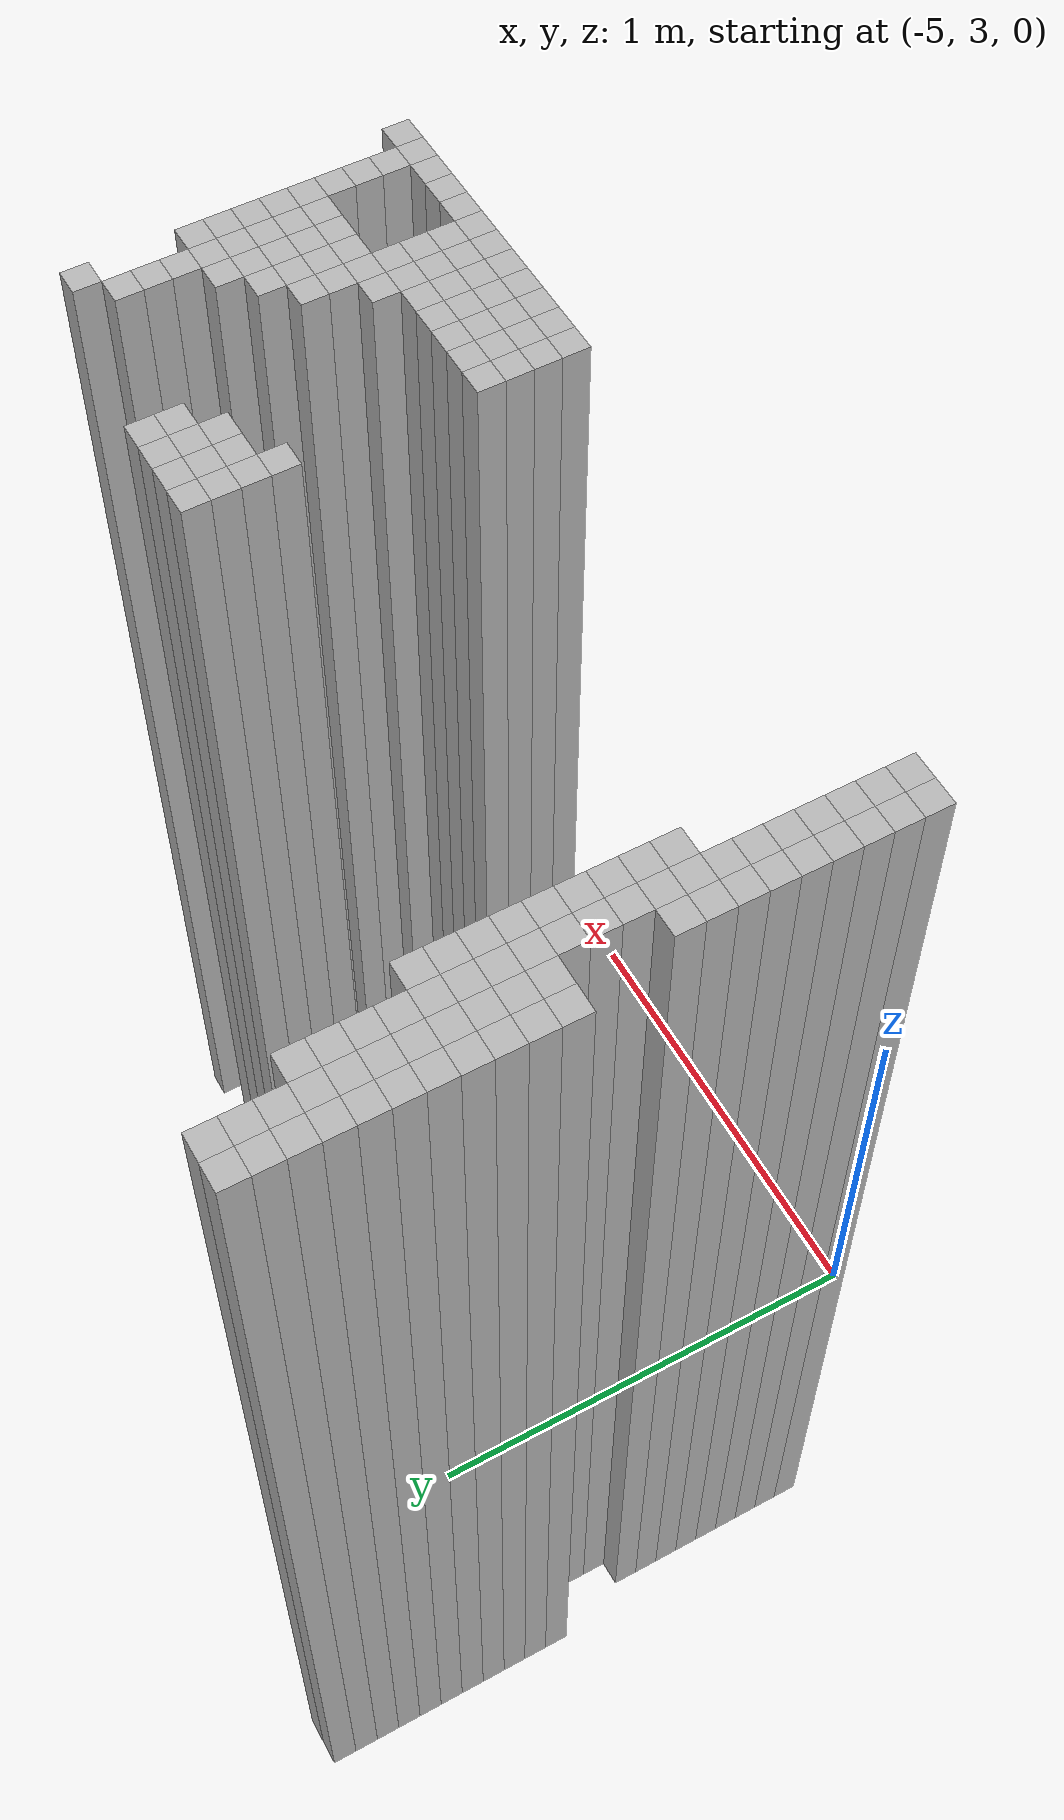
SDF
<sdf version="1.9">
 <world name="map_world">
  <model name="wall_115_64">
   <static>true</static>
   <pose>-5.411 4.480 1.250 0 0 0</pose>
   <link name="link">
    <collision name="collision"><geometry><box><size>0.050 0.050 2.500</size></box></geometry></collision>
    <visual name="visual"><geometry><box><size>0.050 0.050 2.500</size></box></geometry></visual>
   </link>
  </model>
  <model name="wall_116_64">
   <static>true</static>
   <pose>-5.361 4.480 1.250 0 0 0</pose>
   <link name="link">
    <collision name="collision"><geometry><box><size>0.050 0.050 2.500</size></box></geometry></collision>
    <visual name="visual"><geometry><box><size>0.050 0.050 2.500</size></box></geometry></visual>
   </link>
  </model>
  <model name="wall_115_65">
   <static>true</static>
   <pose>-5.411 4.430 1.250 0 0 0</pose>
   <link name="link">
    <collision name="collision"><geometry><box><size>0.050 0.050 2.500</size></box></geometry></collision>
    <visual name="visual"><geometry><box><size>0.050 0.050 2.500</size></box></geometry></visual>
   </link>
  </model>
  <model name="wall_116_65">
   <static>true</static>
   <pose>-5.361 4.430 1.250 0 0 0</pose>
   <link name="link">
    <collision name="collision"><geometry><box><size>0.050 0.050 2.500</size></box></geometry></collision>
    <visual name="visual"><geometry><box><size>0.050 0.050 2.500</size></box></geometry></visual>
   </link>
  </model>
  <model name="wall_115_66">
   <static>true</static>
   <pose>-5.411 4.380 1.250 0 0 0</pose>
   <link name="link">
    <collision name="collision"><geometry><box><size>0.050 0.050 2.500</size></box></geometry></collision>
    <visual name="visual"><geometry><box><size>0.050 0.050 2.500</size></box></geometry></visual>
   </link>
  </model>
  <model name="wall_116_66">
   <static>true</static>
   <pose>-5.361 4.380 1.250 0 0 0</pose>
   <link name="link">
    <collision name="collision"><geometry><box><size>0.050 0.050 2.500</size></box></geometry></collision>
    <visual name="visual"><geometry><box><size>0.050 0.050 2.500</size></box></geometry></visual>
   </link>
  </model>
  <model name="wall_115_67">
   <static>true</static>
   <pose>-5.411 4.330 1.250 0 0 0</pose>
   <link name="link">
    <collision name="collision"><geometry><box><size>0.050 0.050 2.500</size></box></geometry></collision>
    <visual name="visual"><geometry><box><size>0.050 0.050 2.500</size></box></geometry></visual>
   </link>
  </model>
  <model name="wall_116_67">
   <static>true</static>
   <pose>-5.361 4.330 1.250 0 0 0</pose>
   <link name="link">
    <collision name="collision"><geometry><box><size>0.050 0.050 2.500</size></box></geometry></collision>
    <visual name="visual"><geometry><box><size>0.050 0.050 2.500</size></box></geometry></visual>
   </link>
  </model>
  <model name="wall_117_67">
   <static>true</static>
   <pose>-5.311 4.330 1.250 0 0 0</pose>
   <link name="link">
    <collision name="collision"><geometry><box><size>0.050 0.050 2.500</size></box></geometry></collision>
    <visual name="visual"><geometry><box><size>0.050 0.050 2.500</size></box></geometry></visual>
   </link>
  </model>
  <model name="wall_115_68">
   <static>true</static>
   <pose>-5.411 4.280 1.250 0 0 0</pose>
   <link name="link">
    <collision name="collision"><geometry><box><size>0.050 0.050 2.500</size></box></geometry></collision>
    <visual name="visual"><geometry><box><size>0.050 0.050 2.500</size></box></geometry></visual>
   </link>
  </model>
  <model name="wall_116_68">
   <static>true</static>
   <pose>-5.361 4.280 1.250 0 0 0</pose>
   <link name="link">
    <collision name="collision"><geometry><box><size>0.050 0.050 2.500</size></box></geometry></collision>
    <visual name="visual"><geometry><box><size>0.050 0.050 2.500</size></box></geometry></visual>
   </link>
  </model>
  <model name="wall_117_68">
   <static>true</static>
   <pose>-5.311 4.280 1.250 0 0 0</pose>
   <link name="link">
    <collision name="collision"><geometry><box><size>0.050 0.050 2.500</size></box></geometry></collision>
    <visual name="visual"><geometry><box><size>0.050 0.050 2.500</size></box></geometry></visual>
   </link>
  </model>
  <model name="wall_115_69">
   <static>true</static>
   <pose>-5.411 4.230 1.250 0 0 0</pose>
   <link name="link">
    <collision name="collision"><geometry><box><size>0.050 0.050 2.500</size></box></geometry></collision>
    <visual name="visual"><geometry><box><size>0.050 0.050 2.500</size></box></geometry></visual>
   </link>
  </model>
  <model name="wall_116_69">
   <static>true</static>
   <pose>-5.361 4.230 1.250 0 0 0</pose>
   <link name="link">
    <collision name="collision"><geometry><box><size>0.050 0.050 2.500</size></box></geometry></collision>
    <visual name="visual"><geometry><box><size>0.050 0.050 2.500</size></box></geometry></visual>
   </link>
  </model>
  <model name="wall_117_69">
   <static>true</static>
   <pose>-5.311 4.230 1.250 0 0 0</pose>
   <link name="link">
    <collision name="collision"><geometry><box><size>0.050 0.050 2.500</size></box></geometry></collision>
    <visual name="visual"><geometry><box><size>0.050 0.050 2.500</size></box></geometry></visual>
   </link>
  </model>
  <model name="wall_115_70">
   <static>true</static>
   <pose>-5.411 4.180 1.250 0 0 0</pose>
   <link name="link">
    <collision name="collision"><geometry><box><size>0.050 0.050 2.500</size></box></geometry></collision>
    <visual name="visual"><geometry><box><size>0.050 0.050 2.500</size></box></geometry></visual>
   </link>
  </model>
  <model name="wall_116_70">
   <static>true</static>
   <pose>-5.361 4.180 1.250 0 0 0</pose>
   <link name="link">
    <collision name="collision"><geometry><box><size>0.050 0.050 2.500</size></box></geometry></collision>
    <visual name="visual"><geometry><box><size>0.050 0.050 2.500</size></box></geometry></visual>
   </link>
  </model>
  <model name="wall_117_70">
   <static>true</static>
   <pose>-5.311 4.180 1.250 0 0 0</pose>
   <link name="link">
    <collision name="collision"><geometry><box><size>0.050 0.050 2.500</size></box></geometry></collision>
    <visual name="visual"><geometry><box><size>0.050 0.050 2.500</size></box></geometry></visual>
   </link>
  </model>
  <model name="wall_115_71">
   <static>true</static>
   <pose>-5.411 4.130 1.250 0 0 0</pose>
   <link name="link">
    <collision name="collision"><geometry><box><size>0.050 0.050 2.500</size></box></geometry></collision>
    <visual name="visual"><geometry><box><size>0.050 0.050 2.500</size></box></geometry></visual>
   </link>
  </model>
  <model name="wall_116_71">
   <static>true</static>
   <pose>-5.361 4.130 1.250 0 0 0</pose>
   <link name="link">
    <collision name="collision"><geometry><box><size>0.050 0.050 2.500</size></box></geometry></collision>
    <visual name="visual"><geometry><box><size>0.050 0.050 2.500</size></box></geometry></visual>
   </link>
  </model>
  <model name="wall_117_71">
   <static>true</static>
   <pose>-5.311 4.130 1.250 0 0 0</pose>
   <link name="link">
    <collision name="collision"><geometry><box><size>0.050 0.050 2.500</size></box></geometry></collision>
    <visual name="visual"><geometry><box><size>0.050 0.050 2.500</size></box></geometry></visual>
   </link>
  </model>
  <model name="wall_118_71">
   <static>true</static>
   <pose>-5.261 4.130 1.250 0 0 0</pose>
   <link name="link">
    <collision name="collision"><geometry><box><size>0.050 0.050 2.500</size></box></geometry></collision>
    <visual name="visual"><geometry><box><size>0.050 0.050 2.500</size></box></geometry></visual>
   </link>
  </model>
  <model name="wall_115_72">
   <static>true</static>
   <pose>-5.411 4.080 1.250 0 0 0</pose>
   <link name="link">
    <collision name="collision"><geometry><box><size>0.050 0.050 2.500</size></box></geometry></collision>
    <visual name="visual"><geometry><box><size>0.050 0.050 2.500</size></box></geometry></visual>
   </link>
  </model>
  <model name="wall_116_72">
   <static>true</static>
   <pose>-5.361 4.080 1.250 0 0 0</pose>
   <link name="link">
    <collision name="collision"><geometry><box><size>0.050 0.050 2.500</size></box></geometry></collision>
    <visual name="visual"><geometry><box><size>0.050 0.050 2.500</size></box></geometry></visual>
   </link>
  </model>
  <model name="wall_117_72">
   <static>true</static>
   <pose>-5.311 4.080 1.250 0 0 0</pose>
   <link name="link">
    <collision name="collision"><geometry><box><size>0.050 0.050 2.500</size></box></geometry></collision>
    <visual name="visual"><geometry><box><size>0.050 0.050 2.500</size></box></geometry></visual>
   </link>
  </model>
  <model name="wall_118_72">
   <static>true</static>
   <pose>-5.261 4.080 1.250 0 0 0</pose>
   <link name="link">
    <collision name="collision"><geometry><box><size>0.050 0.050 2.500</size></box></geometry></collision>
    <visual name="visual"><geometry><box><size>0.050 0.050 2.500</size></box></geometry></visual>
   </link>
  </model>
  <model name="wall_115_73">
   <static>true</static>
   <pose>-5.411 4.030 1.250 0 0 0</pose>
   <link name="link">
    <collision name="collision"><geometry><box><size>0.050 0.050 2.500</size></box></geometry></collision>
    <visual name="visual"><geometry><box><size>0.050 0.050 2.500</size></box></geometry></visual>
   </link>
  </model>
  <model name="wall_116_73">
   <static>true</static>
   <pose>-5.361 4.030 1.250 0 0 0</pose>
   <link name="link">
    <collision name="collision"><geometry><box><size>0.050 0.050 2.500</size></box></geometry></collision>
    <visual name="visual"><geometry><box><size>0.050 0.050 2.500</size></box></geometry></visual>
   </link>
  </model>
  <model name="wall_117_73">
   <static>true</static>
   <pose>-5.311 4.030 1.250 0 0 0</pose>
   <link name="link">
    <collision name="collision"><geometry><box><size>0.050 0.050 2.500</size></box></geometry></collision>
    <visual name="visual"><geometry><box><size>0.050 0.050 2.500</size></box></geometry></visual>
   </link>
  </model>
  <model name="wall_118_73">
   <static>true</static>
   <pose>-5.261 4.030 1.250 0 0 0</pose>
   <link name="link">
    <collision name="collision"><geometry><box><size>0.050 0.050 2.500</size></box></geometry></collision>
    <visual name="visual"><geometry><box><size>0.050 0.050 2.500</size></box></geometry></visual>
   </link>
  </model>
  <model name="wall_136_73">
   <static>true</static>
   <pose>-4.361 4.030 1.250 0 0 0</pose>
   <link name="link">
    <collision name="collision"><geometry><box><size>0.050 0.050 2.500</size></box></geometry></collision>
    <visual name="visual"><geometry><box><size>0.050 0.050 2.500</size></box></geometry></visual>
   </link>
  </model>
  <model name="wall_137_73">
   <static>true</static>
   <pose>-4.311 4.030 1.250 0 0 0</pose>
   <link name="link">
    <collision name="collision"><geometry><box><size>0.050 0.050 2.500</size></box></geometry></collision>
    <visual name="visual"><geometry><box><size>0.050 0.050 2.500</size></box></geometry></visual>
   </link>
  </model>
  <model name="wall_138_73">
   <static>true</static>
   <pose>-4.261 4.030 1.250 0 0 0</pose>
   <link name="link">
    <collision name="collision"><geometry><box><size>0.050 0.050 2.500</size></box></geometry></collision>
    <visual name="visual"><geometry><box><size>0.050 0.050 2.500</size></box></geometry></visual>
   </link>
  </model>
  <model name="wall_139_73">
   <static>true</static>
   <pose>-4.211 4.030 1.250 0 0 0</pose>
   <link name="link">
    <collision name="collision"><geometry><box><size>0.050 0.050 2.500</size></box></geometry></collision>
    <visual name="visual"><geometry><box><size>0.050 0.050 2.500</size></box></geometry></visual>
   </link>
  </model>
  <model name="wall_115_74">
   <static>true</static>
   <pose>-5.411 3.980 1.250 0 0 0</pose>
   <link name="link">
    <collision name="collision"><geometry><box><size>0.050 0.050 2.500</size></box></geometry></collision>
    <visual name="visual"><geometry><box><size>0.050 0.050 2.500</size></box></geometry></visual>
   </link>
  </model>
  <model name="wall_116_74">
   <static>true</static>
   <pose>-5.361 3.980 1.250 0 0 0</pose>
   <link name="link">
    <collision name="collision"><geometry><box><size>0.050 0.050 2.500</size></box></geometry></collision>
    <visual name="visual"><geometry><box><size>0.050 0.050 2.500</size></box></geometry></visual>
   </link>
  </model>
  <model name="wall_117_74">
   <static>true</static>
   <pose>-5.311 3.980 1.250 0 0 0</pose>
   <link name="link">
    <collision name="collision"><geometry><box><size>0.050 0.050 2.500</size></box></geometry></collision>
    <visual name="visual"><geometry><box><size>0.050 0.050 2.500</size></box></geometry></visual>
   </link>
  </model>
  <model name="wall_118_74">
   <static>true</static>
   <pose>-5.261 3.980 1.250 0 0 0</pose>
   <link name="link">
    <collision name="collision"><geometry><box><size>0.050 0.050 2.500</size></box></geometry></collision>
    <visual name="visual"><geometry><box><size>0.050 0.050 2.500</size></box></geometry></visual>
   </link>
  </model>
  <model name="wall_136_74">
   <static>true</static>
   <pose>-4.361 3.980 1.250 0 0 0</pose>
   <link name="link">
    <collision name="collision"><geometry><box><size>0.050 0.050 2.500</size></box></geometry></collision>
    <visual name="visual"><geometry><box><size>0.050 0.050 2.500</size></box></geometry></visual>
   </link>
  </model>
  <model name="wall_137_74">
   <static>true</static>
   <pose>-4.311 3.980 1.250 0 0 0</pose>
   <link name="link">
    <collision name="collision"><geometry><box><size>0.050 0.050 2.500</size></box></geometry></collision>
    <visual name="visual"><geometry><box><size>0.050 0.050 2.500</size></box></geometry></visual>
   </link>
  </model>
  <model name="wall_138_74">
   <static>true</static>
   <pose>-4.261 3.980 1.250 0 0 0</pose>
   <link name="link">
    <collision name="collision"><geometry><box><size>0.050 0.050 2.500</size></box></geometry></collision>
    <visual name="visual"><geometry><box><size>0.050 0.050 2.500</size></box></geometry></visual>
   </link>
  </model>
  <model name="wall_139_74">
   <static>true</static>
   <pose>-4.211 3.980 1.250 0 0 0</pose>
   <link name="link">
    <collision name="collision"><geometry><box><size>0.050 0.050 2.500</size></box></geometry></collision>
    <visual name="visual"><geometry><box><size>0.050 0.050 2.500</size></box></geometry></visual>
   </link>
  </model>
  <model name="wall_146_74">
   <static>true</static>
   <pose>-3.861 3.980 1.250 0 0 0</pose>
   <link name="link">
    <collision name="collision"><geometry><box><size>0.050 0.050 2.500</size></box></geometry></collision>
    <visual name="visual"><geometry><box><size>0.050 0.050 2.500</size></box></geometry></visual>
   </link>
  </model>
  <model name="wall_117_75">
   <static>true</static>
   <pose>-5.311 3.930 1.250 0 0 0</pose>
   <link name="link">
    <collision name="collision"><geometry><box><size>0.050 0.050 2.500</size></box></geometry></collision>
    <visual name="visual"><geometry><box><size>0.050 0.050 2.500</size></box></geometry></visual>
   </link>
  </model>
  <model name="wall_118_75">
   <static>true</static>
   <pose>-5.261 3.930 1.250 0 0 0</pose>
   <link name="link">
    <collision name="collision"><geometry><box><size>0.050 0.050 2.500</size></box></geometry></collision>
    <visual name="visual"><geometry><box><size>0.050 0.050 2.500</size></box></geometry></visual>
   </link>
  </model>
  <model name="wall_136_75">
   <static>true</static>
   <pose>-4.361 3.930 1.250 0 0 0</pose>
   <link name="link">
    <collision name="collision"><geometry><box><size>0.050 0.050 2.500</size></box></geometry></collision>
    <visual name="visual"><geometry><box><size>0.050 0.050 2.500</size></box></geometry></visual>
   </link>
  </model>
  <model name="wall_137_75">
   <static>true</static>
   <pose>-4.311 3.930 1.250 0 0 0</pose>
   <link name="link">
    <collision name="collision"><geometry><box><size>0.050 0.050 2.500</size></box></geometry></collision>
    <visual name="visual"><geometry><box><size>0.050 0.050 2.500</size></box></geometry></visual>
   </link>
  </model>
  <model name="wall_138_75">
   <static>true</static>
   <pose>-4.261 3.930 1.250 0 0 0</pose>
   <link name="link">
    <collision name="collision"><geometry><box><size>0.050 0.050 2.500</size></box></geometry></collision>
    <visual name="visual"><geometry><box><size>0.050 0.050 2.500</size></box></geometry></visual>
   </link>
  </model>
  <model name="wall_145_75">
   <static>true</static>
   <pose>-3.911 3.930 1.250 0 0 0</pose>
   <link name="link">
    <collision name="collision"><geometry><box><size>0.050 0.050 2.500</size></box></geometry></collision>
    <visual name="visual"><geometry><box><size>0.050 0.050 2.500</size></box></geometry></visual>
   </link>
  </model>
  <model name="wall_117_76">
   <static>true</static>
   <pose>-5.311 3.880 1.250 0 0 0</pose>
   <link name="link">
    <collision name="collision"><geometry><box><size>0.050 0.050 2.500</size></box></geometry></collision>
    <visual name="visual"><geometry><box><size>0.050 0.050 2.500</size></box></geometry></visual>
   </link>
  </model>
  <model name="wall_118_76">
   <static>true</static>
   <pose>-5.261 3.880 1.250 0 0 0</pose>
   <link name="link">
    <collision name="collision"><geometry><box><size>0.050 0.050 2.500</size></box></geometry></collision>
    <visual name="visual"><geometry><box><size>0.050 0.050 2.500</size></box></geometry></visual>
   </link>
  </model>
  <model name="wall_136_76">
   <static>true</static>
   <pose>-4.361 3.880 1.250 0 0 0</pose>
   <link name="link">
    <collision name="collision"><geometry><box><size>0.050 0.050 2.500</size></box></geometry></collision>
    <visual name="visual"><geometry><box><size>0.050 0.050 2.500</size></box></geometry></visual>
   </link>
  </model>
  <model name="wall_145_76">
   <static>true</static>
   <pose>-3.911 3.880 1.250 0 0 0</pose>
   <link name="link">
    <collision name="collision"><geometry><box><size>0.050 0.050 2.500</size></box></geometry></collision>
    <visual name="visual"><geometry><box><size>0.050 0.050 2.500</size></box></geometry></visual>
   </link>
  </model>
  <model name="wall_117_77">
   <static>true</static>
   <pose>-5.311 3.830 1.250 0 0 0</pose>
   <link name="link">
    <collision name="collision"><geometry><box><size>0.050 0.050 2.500</size></box></geometry></collision>
    <visual name="visual"><geometry><box><size>0.050 0.050 2.500</size></box></geometry></visual>
   </link>
  </model>
  <model name="wall_118_77">
   <static>true</static>
   <pose>-5.261 3.830 1.250 0 0 0</pose>
   <link name="link">
    <collision name="collision"><geometry><box><size>0.050 0.050 2.500</size></box></geometry></collision>
    <visual name="visual"><geometry><box><size>0.050 0.050 2.500</size></box></geometry></visual>
   </link>
  </model>
  <model name="wall_145_77">
   <static>true</static>
   <pose>-3.911 3.830 1.250 0 0 0</pose>
   <link name="link">
    <collision name="collision"><geometry><box><size>0.050 0.050 2.500</size></box></geometry></collision>
    <visual name="visual"><geometry><box><size>0.050 0.050 2.500</size></box></geometry></visual>
   </link>
  </model>
  <model name="wall_116_78">
   <static>true</static>
   <pose>-5.361 3.780 1.250 0 0 0</pose>
   <link name="link">
    <collision name="collision"><geometry><box><size>0.050 0.050 2.500</size></box></geometry></collision>
    <visual name="visual"><geometry><box><size>0.050 0.050 2.500</size></box></geometry></visual>
   </link>
  </model>
  <model name="wall_117_78">
   <static>true</static>
   <pose>-5.311 3.780 1.250 0 0 0</pose>
   <link name="link">
    <collision name="collision"><geometry><box><size>0.050 0.050 2.500</size></box></geometry></collision>
    <visual name="visual"><geometry><box><size>0.050 0.050 2.500</size></box></geometry></visual>
   </link>
  </model>
  <model name="wall_118_78">
   <static>true</static>
   <pose>-5.261 3.780 1.250 0 0 0</pose>
   <link name="link">
    <collision name="collision"><geometry><box><size>0.050 0.050 2.500</size></box></geometry></collision>
    <visual name="visual"><geometry><box><size>0.050 0.050 2.500</size></box></geometry></visual>
   </link>
  </model>
  <model name="wall_144_78">
   <static>true</static>
   <pose>-3.961 3.780 1.250 0 0 0</pose>
   <link name="link">
    <collision name="collision"><geometry><box><size>0.050 0.050 2.500</size></box></geometry></collision>
    <visual name="visual"><geometry><box><size>0.050 0.050 2.500</size></box></geometry></visual>
   </link>
  </model>
  <model name="wall_145_78">
   <static>true</static>
   <pose>-3.911 3.780 1.250 0 0 0</pose>
   <link name="link">
    <collision name="collision"><geometry><box><size>0.050 0.050 2.500</size></box></geometry></collision>
    <visual name="visual"><geometry><box><size>0.050 0.050 2.500</size></box></geometry></visual>
   </link>
  </model>
  <model name="wall_146_78">
   <static>true</static>
   <pose>-3.861 3.780 1.250 0 0 0</pose>
   <link name="link">
    <collision name="collision"><geometry><box><size>0.050 0.050 2.500</size></box></geometry></collision>
    <visual name="visual"><geometry><box><size>0.050 0.050 2.500</size></box></geometry></visual>
   </link>
  </model>
  <model name="wall_116_79">
   <static>true</static>
   <pose>-5.361 3.730 1.250 0 0 0</pose>
   <link name="link">
    <collision name="collision"><geometry><box><size>0.050 0.050 2.500</size></box></geometry></collision>
    <visual name="visual"><geometry><box><size>0.050 0.050 2.500</size></box></geometry></visual>
   </link>
  </model>
  <model name="wall_117_79">
   <static>true</static>
   <pose>-5.311 3.730 1.250 0 0 0</pose>
   <link name="link">
    <collision name="collision"><geometry><box><size>0.050 0.050 2.500</size></box></geometry></collision>
    <visual name="visual"><geometry><box><size>0.050 0.050 2.500</size></box></geometry></visual>
   </link>
  </model>
  <model name="wall_118_79">
   <static>true</static>
   <pose>-5.261 3.730 1.250 0 0 0</pose>
   <link name="link">
    <collision name="collision"><geometry><box><size>0.050 0.050 2.500</size></box></geometry></collision>
    <visual name="visual"><geometry><box><size>0.050 0.050 2.500</size></box></geometry></visual>
   </link>
  </model>
  <model name="wall_143_79">
   <static>true</static>
   <pose>-4.011 3.730 1.250 0 0 0</pose>
   <link name="link">
    <collision name="collision"><geometry><box><size>0.050 0.050 2.500</size></box></geometry></collision>
    <visual name="visual"><geometry><box><size>0.050 0.050 2.500</size></box></geometry></visual>
   </link>
  </model>
  <model name="wall_144_79">
   <static>true</static>
   <pose>-3.961 3.730 1.250 0 0 0</pose>
   <link name="link">
    <collision name="collision"><geometry><box><size>0.050 0.050 2.500</size></box></geometry></collision>
    <visual name="visual"><geometry><box><size>0.050 0.050 2.500</size></box></geometry></visual>
   </link>
  </model>
  <model name="wall_145_79">
   <static>true</static>
   <pose>-3.911 3.730 1.250 0 0 0</pose>
   <link name="link">
    <collision name="collision"><geometry><box><size>0.050 0.050 2.500</size></box></geometry></collision>
    <visual name="visual"><geometry><box><size>0.050 0.050 2.500</size></box></geometry></visual>
   </link>
  </model>
  <model name="wall_146_79">
   <static>true</static>
   <pose>-3.861 3.730 1.250 0 0 0</pose>
   <link name="link">
    <collision name="collision"><geometry><box><size>0.050 0.050 2.500</size></box></geometry></collision>
    <visual name="visual"><geometry><box><size>0.050 0.050 2.500</size></box></geometry></visual>
   </link>
  </model>
  <model name="wall_116_80">
   <static>true</static>
   <pose>-5.361 3.680 1.250 0 0 0</pose>
   <link name="link">
    <collision name="collision"><geometry><box><size>0.050 0.050 2.500</size></box></geometry></collision>
    <visual name="visual"><geometry><box><size>0.050 0.050 2.500</size></box></geometry></visual>
   </link>
  </model>
  <model name="wall_117_80">
   <static>true</static>
   <pose>-5.311 3.680 1.250 0 0 0</pose>
   <link name="link">
    <collision name="collision"><geometry><box><size>0.050 0.050 2.500</size></box></geometry></collision>
    <visual name="visual"><geometry><box><size>0.050 0.050 2.500</size></box></geometry></visual>
   </link>
  </model>
  <model name="wall_142_80">
   <static>true</static>
   <pose>-4.061 3.680 1.250 0 0 0</pose>
   <link name="link">
    <collision name="collision"><geometry><box><size>0.050 0.050 2.500</size></box></geometry></collision>
    <visual name="visual"><geometry><box><size>0.050 0.050 2.500</size></box></geometry></visual>
   </link>
  </model>
  <model name="wall_143_80">
   <static>true</static>
   <pose>-4.011 3.680 1.250 0 0 0</pose>
   <link name="link">
    <collision name="collision"><geometry><box><size>0.050 0.050 2.500</size></box></geometry></collision>
    <visual name="visual"><geometry><box><size>0.050 0.050 2.500</size></box></geometry></visual>
   </link>
  </model>
  <model name="wall_144_80">
   <static>true</static>
   <pose>-3.961 3.680 1.250 0 0 0</pose>
   <link name="link">
    <collision name="collision"><geometry><box><size>0.050 0.050 2.500</size></box></geometry></collision>
    <visual name="visual"><geometry><box><size>0.050 0.050 2.500</size></box></geometry></visual>
   </link>
  </model>
  <model name="wall_145_80">
   <static>true</static>
   <pose>-3.911 3.680 1.250 0 0 0</pose>
   <link name="link">
    <collision name="collision"><geometry><box><size>0.050 0.050 2.500</size></box></geometry></collision>
    <visual name="visual"><geometry><box><size>0.050 0.050 2.500</size></box></geometry></visual>
   </link>
  </model>
  <model name="wall_146_80">
   <static>true</static>
   <pose>-3.861 3.680 1.250 0 0 0</pose>
   <link name="link">
    <collision name="collision"><geometry><box><size>0.050 0.050 2.500</size></box></geometry></collision>
    <visual name="visual"><geometry><box><size>0.050 0.050 2.500</size></box></geometry></visual>
   </link>
  </model>
  <model name="wall_116_81">
   <static>true</static>
   <pose>-5.361 3.630 1.250 0 0 0</pose>
   <link name="link">
    <collision name="collision"><geometry><box><size>0.050 0.050 2.500</size></box></geometry></collision>
    <visual name="visual"><geometry><box><size>0.050 0.050 2.500</size></box></geometry></visual>
   </link>
  </model>
  <model name="wall_117_81">
   <static>true</static>
   <pose>-5.311 3.630 1.250 0 0 0</pose>
   <link name="link">
    <collision name="collision"><geometry><box><size>0.050 0.050 2.500</size></box></geometry></collision>
    <visual name="visual"><geometry><box><size>0.050 0.050 2.500</size></box></geometry></visual>
   </link>
  </model>
  <model name="wall_142_81">
   <static>true</static>
   <pose>-4.061 3.630 1.250 0 0 0</pose>
   <link name="link">
    <collision name="collision"><geometry><box><size>0.050 0.050 2.500</size></box></geometry></collision>
    <visual name="visual"><geometry><box><size>0.050 0.050 2.500</size></box></geometry></visual>
   </link>
  </model>
  <model name="wall_143_81">
   <static>true</static>
   <pose>-4.011 3.630 1.250 0 0 0</pose>
   <link name="link">
    <collision name="collision"><geometry><box><size>0.050 0.050 2.500</size></box></geometry></collision>
    <visual name="visual"><geometry><box><size>0.050 0.050 2.500</size></box></geometry></visual>
   </link>
  </model>
  <model name="wall_144_81">
   <static>true</static>
   <pose>-3.961 3.630 1.250 0 0 0</pose>
   <link name="link">
    <collision name="collision"><geometry><box><size>0.050 0.050 2.500</size></box></geometry></collision>
    <visual name="visual"><geometry><box><size>0.050 0.050 2.500</size></box></geometry></visual>
   </link>
  </model>
  <model name="wall_145_81">
   <static>true</static>
   <pose>-3.911 3.630 1.250 0 0 0</pose>
   <link name="link">
    <collision name="collision"><geometry><box><size>0.050 0.050 2.500</size></box></geometry></collision>
    <visual name="visual"><geometry><box><size>0.050 0.050 2.500</size></box></geometry></visual>
   </link>
  </model>
  <model name="wall_146_81">
   <static>true</static>
   <pose>-3.861 3.630 1.250 0 0 0</pose>
   <link name="link">
    <collision name="collision"><geometry><box><size>0.050 0.050 2.500</size></box></geometry></collision>
    <visual name="visual"><geometry><box><size>0.050 0.050 2.500</size></box></geometry></visual>
   </link>
  </model>
  <model name="wall_116_82">
   <static>true</static>
   <pose>-5.361 3.580 1.250 0 0 0</pose>
   <link name="link">
    <collision name="collision"><geometry><box><size>0.050 0.050 2.500</size></box></geometry></collision>
    <visual name="visual"><geometry><box><size>0.050 0.050 2.500</size></box></geometry></visual>
   </link>
  </model>
  <model name="wall_117_82">
   <static>true</static>
   <pose>-5.311 3.580 1.250 0 0 0</pose>
   <link name="link">
    <collision name="collision"><geometry><box><size>0.050 0.050 2.500</size></box></geometry></collision>
    <visual name="visual"><geometry><box><size>0.050 0.050 2.500</size></box></geometry></visual>
   </link>
  </model>
  <model name="wall_141_82">
   <static>true</static>
   <pose>-4.111 3.580 1.250 0 0 0</pose>
   <link name="link">
    <collision name="collision"><geometry><box><size>0.050 0.050 2.500</size></box></geometry></collision>
    <visual name="visual"><geometry><box><size>0.050 0.050 2.500</size></box></geometry></visual>
   </link>
  </model>
  <model name="wall_142_82">
   <static>true</static>
   <pose>-4.061 3.580 1.250 0 0 0</pose>
   <link name="link">
    <collision name="collision"><geometry><box><size>0.050 0.050 2.500</size></box></geometry></collision>
    <visual name="visual"><geometry><box><size>0.050 0.050 2.500</size></box></geometry></visual>
   </link>
  </model>
  <model name="wall_143_82">
   <static>true</static>
   <pose>-4.011 3.580 1.250 0 0 0</pose>
   <link name="link">
    <collision name="collision"><geometry><box><size>0.050 0.050 2.500</size></box></geometry></collision>
    <visual name="visual"><geometry><box><size>0.050 0.050 2.500</size></box></geometry></visual>
   </link>
  </model>
  <model name="wall_144_82">
   <static>true</static>
   <pose>-3.961 3.580 1.250 0 0 0</pose>
   <link name="link">
    <collision name="collision"><geometry><box><size>0.050 0.050 2.500</size></box></geometry></collision>
    <visual name="visual"><geometry><box><size>0.050 0.050 2.500</size></box></geometry></visual>
   </link>
  </model>
  <model name="wall_145_82">
   <static>true</static>
   <pose>-3.911 3.580 1.250 0 0 0</pose>
   <link name="link">
    <collision name="collision"><geometry><box><size>0.050 0.050 2.500</size></box></geometry></collision>
    <visual name="visual"><geometry><box><size>0.050 0.050 2.500</size></box></geometry></visual>
   </link>
  </model>
  <model name="wall_146_82">
   <static>true</static>
   <pose>-3.861 3.580 1.250 0 0 0</pose>
   <link name="link">
    <collision name="collision"><geometry><box><size>0.050 0.050 2.500</size></box></geometry></collision>
    <visual name="visual"><geometry><box><size>0.050 0.050 2.500</size></box></geometry></visual>
   </link>
  </model>
  <model name="wall_116_83">
   <static>true</static>
   <pose>-5.361 3.530 1.250 0 0 0</pose>
   <link name="link">
    <collision name="collision"><geometry><box><size>0.050 0.050 2.500</size></box></geometry></collision>
    <visual name="visual"><geometry><box><size>0.050 0.050 2.500</size></box></geometry></visual>
   </link>
  </model>
  <model name="wall_117_83">
   <static>true</static>
   <pose>-5.311 3.530 1.250 0 0 0</pose>
   <link name="link">
    <collision name="collision"><geometry><box><size>0.050 0.050 2.500</size></box></geometry></collision>
    <visual name="visual"><geometry><box><size>0.050 0.050 2.500</size></box></geometry></visual>
   </link>
  </model>
  <model name="wall_136_83">
   <static>true</static>
   <pose>-4.361 3.530 1.250 0 0 0</pose>
   <link name="link">
    <collision name="collision"><geometry><box><size>0.050 0.050 2.500</size></box></geometry></collision>
    <visual name="visual"><geometry><box><size>0.050 0.050 2.500</size></box></geometry></visual>
   </link>
  </model>
  <model name="wall_137_83">
   <static>true</static>
   <pose>-4.311 3.530 1.250 0 0 0</pose>
   <link name="link">
    <collision name="collision"><geometry><box><size>0.050 0.050 2.500</size></box></geometry></collision>
    <visual name="visual"><geometry><box><size>0.050 0.050 2.500</size></box></geometry></visual>
   </link>
  </model>
  <model name="wall_138_83">
   <static>true</static>
   <pose>-4.261 3.530 1.250 0 0 0</pose>
   <link name="link">
    <collision name="collision"><geometry><box><size>0.050 0.050 2.500</size></box></geometry></collision>
    <visual name="visual"><geometry><box><size>0.050 0.050 2.500</size></box></geometry></visual>
   </link>
  </model>
  <model name="wall_139_83">
   <static>true</static>
   <pose>-4.211 3.530 1.250 0 0 0</pose>
   <link name="link">
    <collision name="collision"><geometry><box><size>0.050 0.050 2.500</size></box></geometry></collision>
    <visual name="visual"><geometry><box><size>0.050 0.050 2.500</size></box></geometry></visual>
   </link>
  </model>
  <model name="wall_140_83">
   <static>true</static>
   <pose>-4.161 3.530 1.250 0 0 0</pose>
   <link name="link">
    <collision name="collision"><geometry><box><size>0.050 0.050 2.500</size></box></geometry></collision>
    <visual name="visual"><geometry><box><size>0.050 0.050 2.500</size></box></geometry></visual>
   </link>
  </model>
  <model name="wall_141_83">
   <static>true</static>
   <pose>-4.111 3.530 1.250 0 0 0</pose>
   <link name="link">
    <collision name="collision"><geometry><box><size>0.050 0.050 2.500</size></box></geometry></collision>
    <visual name="visual"><geometry><box><size>0.050 0.050 2.500</size></box></geometry></visual>
   </link>
  </model>
  <model name="wall_142_83">
   <static>true</static>
   <pose>-4.061 3.530 1.250 0 0 0</pose>
   <link name="link">
    <collision name="collision"><geometry><box><size>0.050 0.050 2.500</size></box></geometry></collision>
    <visual name="visual"><geometry><box><size>0.050 0.050 2.500</size></box></geometry></visual>
   </link>
  </model>
  <model name="wall_146_83">
   <static>true</static>
   <pose>-3.861 3.530 1.250 0 0 0</pose>
   <link name="link">
    <collision name="collision"><geometry><box><size>0.050 0.050 2.500</size></box></geometry></collision>
    <visual name="visual"><geometry><box><size>0.050 0.050 2.500</size></box></geometry></visual>
   </link>
  </model>
  <model name="wall_116_84">
   <static>true</static>
   <pose>-5.361 3.480 1.250 0 0 0</pose>
   <link name="link">
    <collision name="collision"><geometry><box><size>0.050 0.050 2.500</size></box></geometry></collision>
    <visual name="visual"><geometry><box><size>0.050 0.050 2.500</size></box></geometry></visual>
   </link>
  </model>
  <model name="wall_117_84">
   <static>true</static>
   <pose>-5.311 3.480 1.250 0 0 0</pose>
   <link name="link">
    <collision name="collision"><geometry><box><size>0.050 0.050 2.500</size></box></geometry></collision>
    <visual name="visual"><geometry><box><size>0.050 0.050 2.500</size></box></geometry></visual>
   </link>
  </model>
  <model name="wall_136_84">
   <static>true</static>
   <pose>-4.361 3.480 1.250 0 0 0</pose>
   <link name="link">
    <collision name="collision"><geometry><box><size>0.050 0.050 2.500</size></box></geometry></collision>
    <visual name="visual"><geometry><box><size>0.050 0.050 2.500</size></box></geometry></visual>
   </link>
  </model>
  <model name="wall_137_84">
   <static>true</static>
   <pose>-4.311 3.480 1.250 0 0 0</pose>
   <link name="link">
    <collision name="collision"><geometry><box><size>0.050 0.050 2.500</size></box></geometry></collision>
    <visual name="visual"><geometry><box><size>0.050 0.050 2.500</size></box></geometry></visual>
   </link>
  </model>
  <model name="wall_138_84">
   <static>true</static>
   <pose>-4.261 3.480 1.250 0 0 0</pose>
   <link name="link">
    <collision name="collision"><geometry><box><size>0.050 0.050 2.500</size></box></geometry></collision>
    <visual name="visual"><geometry><box><size>0.050 0.050 2.500</size></box></geometry></visual>
   </link>
  </model>
  <model name="wall_139_84">
   <static>true</static>
   <pose>-4.211 3.480 1.250 0 0 0</pose>
   <link name="link">
    <collision name="collision"><geometry><box><size>0.050 0.050 2.500</size></box></geometry></collision>
    <visual name="visual"><geometry><box><size>0.050 0.050 2.500</size></box></geometry></visual>
   </link>
  </model>
  <model name="wall_140_84">
   <static>true</static>
   <pose>-4.161 3.480 1.250 0 0 0</pose>
   <link name="link">
    <collision name="collision"><geometry><box><size>0.050 0.050 2.500</size></box></geometry></collision>
    <visual name="visual"><geometry><box><size>0.050 0.050 2.500</size></box></geometry></visual>
   </link>
  </model>
  <model name="wall_141_84">
   <static>true</static>
   <pose>-4.111 3.480 1.250 0 0 0</pose>
   <link name="link">
    <collision name="collision"><geometry><box><size>0.050 0.050 2.500</size></box></geometry></collision>
    <visual name="visual"><geometry><box><size>0.050 0.050 2.500</size></box></geometry></visual>
   </link>
  </model>
  <model name="wall_142_84">
   <static>true</static>
   <pose>-4.061 3.480 1.250 0 0 0</pose>
   <link name="link">
    <collision name="collision"><geometry><box><size>0.050 0.050 2.500</size></box></geometry></collision>
    <visual name="visual"><geometry><box><size>0.050 0.050 2.500</size></box></geometry></visual>
   </link>
  </model>
  <model name="wall_146_84">
   <static>true</static>
   <pose>-3.861 3.480 1.250 0 0 0</pose>
   <link name="link">
    <collision name="collision"><geometry><box><size>0.050 0.050 2.500</size></box></geometry></collision>
    <visual name="visual"><geometry><box><size>0.050 0.050 2.500</size></box></geometry></visual>
   </link>
  </model>
  <model name="wall_116_85">
   <static>true</static>
   <pose>-5.361 3.430 1.250 0 0 0</pose>
   <link name="link">
    <collision name="collision"><geometry><box><size>0.050 0.050 2.500</size></box></geometry></collision>
    <visual name="visual"><geometry><box><size>0.050 0.050 2.500</size></box></geometry></visual>
   </link>
  </model>
  <model name="wall_117_85">
   <static>true</static>
   <pose>-5.311 3.430 1.250 0 0 0</pose>
   <link name="link">
    <collision name="collision"><geometry><box><size>0.050 0.050 2.500</size></box></geometry></collision>
    <visual name="visual"><geometry><box><size>0.050 0.050 2.500</size></box></geometry></visual>
   </link>
  </model>
  <model name="wall_136_85">
   <static>true</static>
   <pose>-4.361 3.430 1.250 0 0 0</pose>
   <link name="link">
    <collision name="collision"><geometry><box><size>0.050 0.050 2.500</size></box></geometry></collision>
    <visual name="visual"><geometry><box><size>0.050 0.050 2.500</size></box></geometry></visual>
   </link>
  </model>
  <model name="wall_137_85">
   <static>true</static>
   <pose>-4.311 3.430 1.250 0 0 0</pose>
   <link name="link">
    <collision name="collision"><geometry><box><size>0.050 0.050 2.500</size></box></geometry></collision>
    <visual name="visual"><geometry><box><size>0.050 0.050 2.500</size></box></geometry></visual>
   </link>
  </model>
  <model name="wall_138_85">
   <static>true</static>
   <pose>-4.261 3.430 1.250 0 0 0</pose>
   <link name="link">
    <collision name="collision"><geometry><box><size>0.050 0.050 2.500</size></box></geometry></collision>
    <visual name="visual"><geometry><box><size>0.050 0.050 2.500</size></box></geometry></visual>
   </link>
  </model>
  <model name="wall_139_85">
   <static>true</static>
   <pose>-4.211 3.430 1.250 0 0 0</pose>
   <link name="link">
    <collision name="collision"><geometry><box><size>0.050 0.050 2.500</size></box></geometry></collision>
    <visual name="visual"><geometry><box><size>0.050 0.050 2.500</size></box></geometry></visual>
   </link>
  </model>
  <model name="wall_140_85">
   <static>true</static>
   <pose>-4.161 3.430 1.250 0 0 0</pose>
   <link name="link">
    <collision name="collision"><geometry><box><size>0.050 0.050 2.500</size></box></geometry></collision>
    <visual name="visual"><geometry><box><size>0.050 0.050 2.500</size></box></geometry></visual>
   </link>
  </model>
  <model name="wall_141_85">
   <static>true</static>
   <pose>-4.111 3.430 1.250 0 0 0</pose>
   <link name="link">
    <collision name="collision"><geometry><box><size>0.050 0.050 2.500</size></box></geometry></collision>
    <visual name="visual"><geometry><box><size>0.050 0.050 2.500</size></box></geometry></visual>
   </link>
  </model>
  <model name="wall_142_85">
   <static>true</static>
   <pose>-4.061 3.430 1.250 0 0 0</pose>
   <link name="link">
    <collision name="collision"><geometry><box><size>0.050 0.050 2.500</size></box></geometry></collision>
    <visual name="visual"><geometry><box><size>0.050 0.050 2.500</size></box></geometry></visual>
   </link>
  </model>
  <model name="wall_146_85">
   <static>true</static>
   <pose>-3.861 3.430 1.250 0 0 0</pose>
   <link name="link">
    <collision name="collision"><geometry><box><size>0.050 0.050 2.500</size></box></geometry></collision>
    <visual name="visual"><geometry><box><size>0.050 0.050 2.500</size></box></geometry></visual>
   </link>
  </model>
  <model name="wall_116_86">
   <static>true</static>
   <pose>-5.361 3.380 1.250 0 0 0</pose>
   <link name="link">
    <collision name="collision"><geometry><box><size>0.050 0.050 2.500</size></box></geometry></collision>
    <visual name="visual"><geometry><box><size>0.050 0.050 2.500</size></box></geometry></visual>
   </link>
  </model>
  <model name="wall_117_86">
   <static>true</static>
   <pose>-5.311 3.380 1.250 0 0 0</pose>
   <link name="link">
    <collision name="collision"><geometry><box><size>0.050 0.050 2.500</size></box></geometry></collision>
    <visual name="visual"><geometry><box><size>0.050 0.050 2.500</size></box></geometry></visual>
   </link>
  </model>
  <model name="wall_136_86">
   <static>true</static>
   <pose>-4.361 3.380 1.250 0 0 0</pose>
   <link name="link">
    <collision name="collision"><geometry><box><size>0.050 0.050 2.500</size></box></geometry></collision>
    <visual name="visual"><geometry><box><size>0.050 0.050 2.500</size></box></geometry></visual>
   </link>
  </model>
  <model name="wall_137_86">
   <static>true</static>
   <pose>-4.311 3.380 1.250 0 0 0</pose>
   <link name="link">
    <collision name="collision"><geometry><box><size>0.050 0.050 2.500</size></box></geometry></collision>
    <visual name="visual"><geometry><box><size>0.050 0.050 2.500</size></box></geometry></visual>
   </link>
  </model>
  <model name="wall_138_86">
   <static>true</static>
   <pose>-4.261 3.380 1.250 0 0 0</pose>
   <link name="link">
    <collision name="collision"><geometry><box><size>0.050 0.050 2.500</size></box></geometry></collision>
    <visual name="visual"><geometry><box><size>0.050 0.050 2.500</size></box></geometry></visual>
   </link>
  </model>
  <model name="wall_139_86">
   <static>true</static>
   <pose>-4.211 3.380 1.250 0 0 0</pose>
   <link name="link">
    <collision name="collision"><geometry><box><size>0.050 0.050 2.500</size></box></geometry></collision>
    <visual name="visual"><geometry><box><size>0.050 0.050 2.500</size></box></geometry></visual>
   </link>
  </model>
  <model name="wall_140_86">
   <static>true</static>
   <pose>-4.161 3.380 1.250 0 0 0</pose>
   <link name="link">
    <collision name="collision"><geometry><box><size>0.050 0.050 2.500</size></box></geometry></collision>
    <visual name="visual"><geometry><box><size>0.050 0.050 2.500</size></box></geometry></visual>
   </link>
  </model>
  <model name="wall_141_86">
   <static>true</static>
   <pose>-4.111 3.380 1.250 0 0 0</pose>
   <link name="link">
    <collision name="collision"><geometry><box><size>0.050 0.050 2.500</size></box></geometry></collision>
    <visual name="visual"><geometry><box><size>0.050 0.050 2.500</size></box></geometry></visual>
   </link>
  </model>
  <model name="wall_142_86">
   <static>true</static>
   <pose>-4.061 3.380 1.250 0 0 0</pose>
   <link name="link">
    <collision name="collision"><geometry><box><size>0.050 0.050 2.500</size></box></geometry></collision>
    <visual name="visual"><geometry><box><size>0.050 0.050 2.500</size></box></geometry></visual>
   </link>
  </model>
  <model name="wall_143_86">
   <static>true</static>
   <pose>-4.011 3.380 1.250 0 0 0</pose>
   <link name="link">
    <collision name="collision"><geometry><box><size>0.050 0.050 2.500</size></box></geometry></collision>
    <visual name="visual"><geometry><box><size>0.050 0.050 2.500</size></box></geometry></visual>
   </link>
  </model>
  <model name="wall_144_86">
   <static>true</static>
   <pose>-3.961 3.380 1.250 0 0 0</pose>
   <link name="link">
    <collision name="collision"><geometry><box><size>0.050 0.050 2.500</size></box></geometry></collision>
    <visual name="visual"><geometry><box><size>0.050 0.050 2.500</size></box></geometry></visual>
   </link>
  </model>
  <model name="wall_145_86">
   <static>true</static>
   <pose>-3.911 3.380 1.250 0 0 0</pose>
   <link name="link">
    <collision name="collision"><geometry><box><size>0.050 0.050 2.500</size></box></geometry></collision>
    <visual name="visual"><geometry><box><size>0.050 0.050 2.500</size></box></geometry></visual>
   </link>
  </model>
  <model name="wall_146_86">
   <static>true</static>
   <pose>-3.861 3.380 1.250 0 0 0</pose>
   <link name="link">
    <collision name="collision"><geometry><box><size>0.050 0.050 2.500</size></box></geometry></collision>
    <visual name="visual"><geometry><box><size>0.050 0.050 2.500</size></box></geometry></visual>
   </link>
  </model>
  <model name="wall_147_86">
   <static>true</static>
   <pose>-3.811 3.380 1.250 0 0 0</pose>
   <link name="link">
    <collision name="collision"><geometry><box><size>0.050 0.050 2.500</size></box></geometry></collision>
    <visual name="visual"><geometry><box><size>0.050 0.050 2.500</size></box></geometry></visual>
   </link>
  </model>
 </world>
</sdf>
